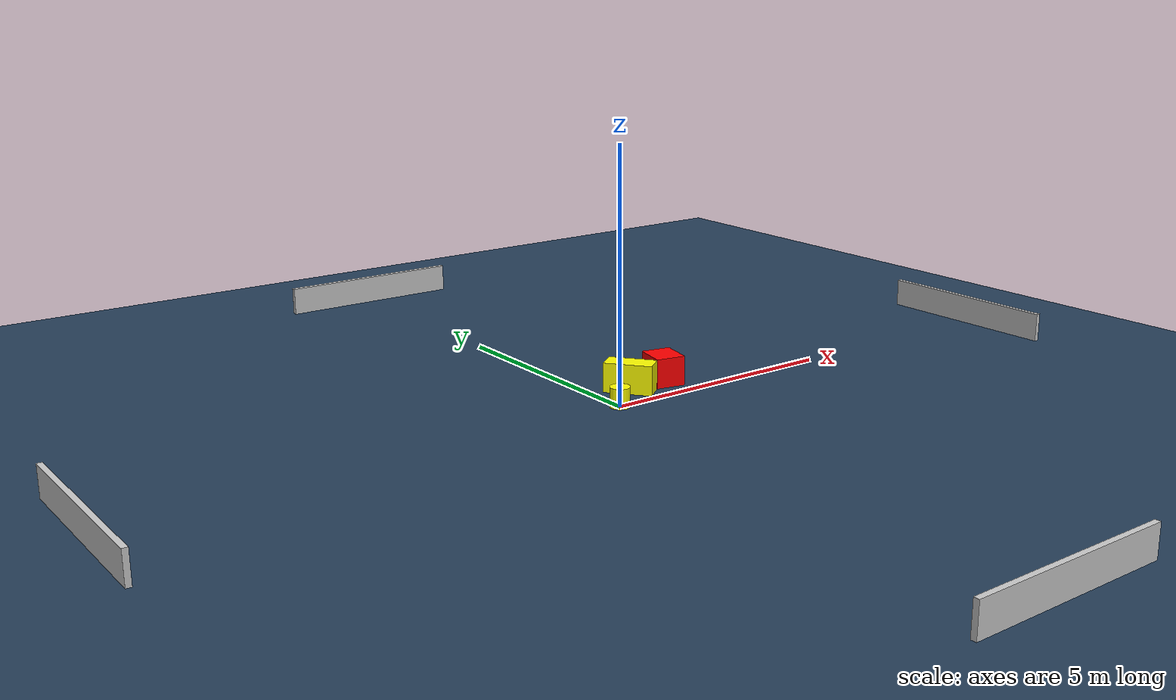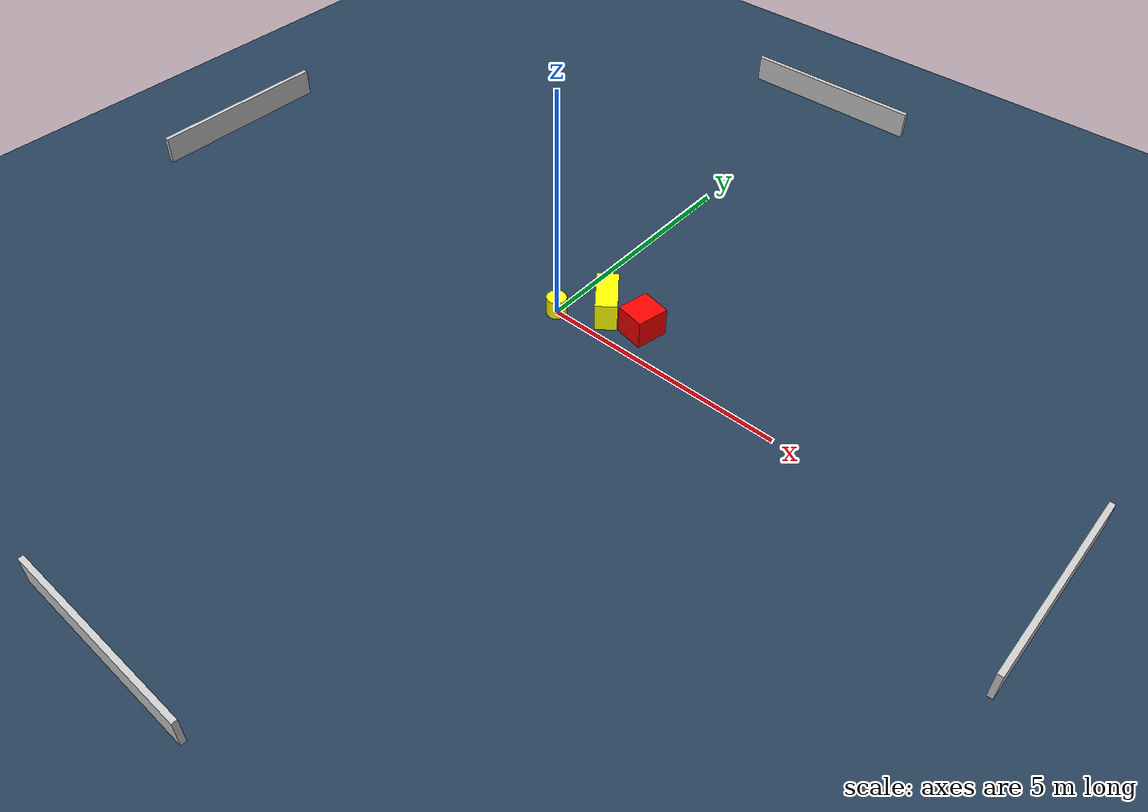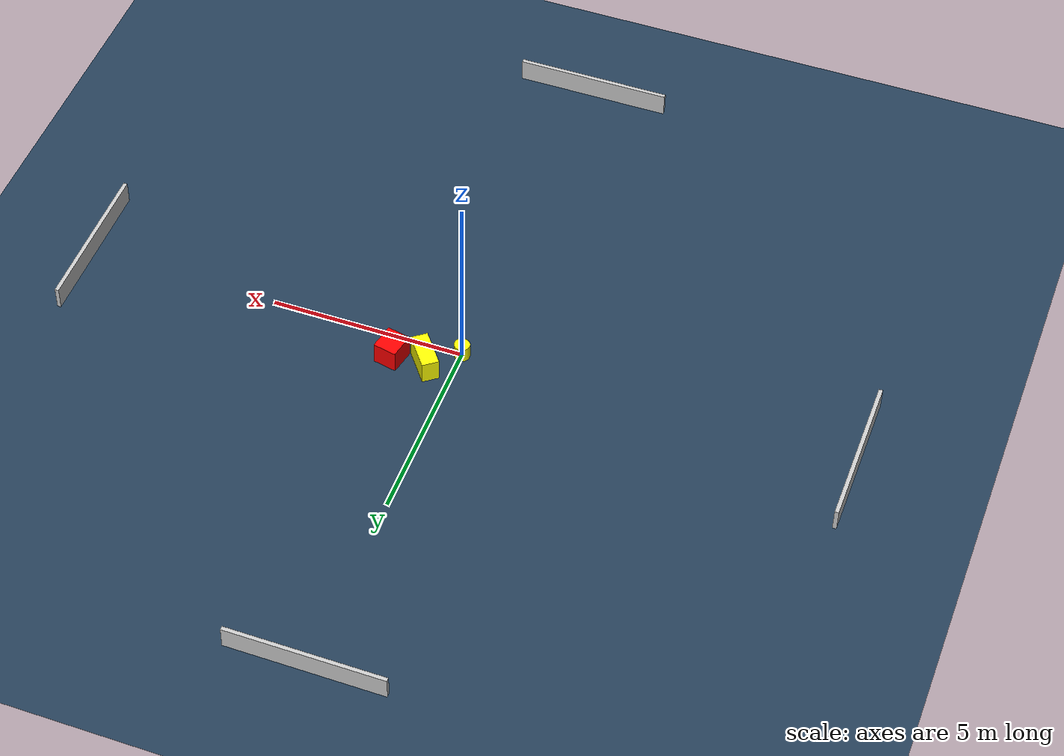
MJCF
<?xml version="1.0" ?>
<mujoco model="generated_environment">
  <option timestep="0.01" integrator="RK4" cone="elliptic"/>
  <default>
    <geom density="1"/>
  </default>
  <asset>
    <texture builtin="gradient" height="3072" name="skybox" rgb1="0.3 0.5 0.7" rgb2="0 0 0" type="skybox" width="512"/>
    <texture builtin="checker" height="300" name="groundplane" rgb1="0.2 0.3 0.4" rgb2="0.1 0.2 0.3" type="2d" width="300"/>
    <material name="groundplane" reflectance="0.2" texrepeat="5 5" texture="groundplane"/>
  </asset>
  <worldbody>
    <light dir="0 0 -1" directional="true" pos="0 0 1.5"/>
    <geom condim="3" friction="0.5 0.005 0.001" material="groundplane" name="floor" pos="0 0 0" size="0 0 0.05" type="plane"/>
    <body name="walls">
      <geom name="wall_1" condim="4" pos="-10.0 0.0 0.3" rgba="0.800000011920929 0.800000011920929 0.800000011920929 1.0" size="0.05 2.0 0.3" type="box"/>
      <geom name="wall_2" condim="4" pos="10.0 0.0 0.3" rgba="0.800000011920929 0.800000011920929 0.800000011920929 1.0" size="0.05 2.0 0.3" type="box"/>
      <geom name="wall_3" condim="4" pos="0.0 -10.0 0.3" rgba="0.800000011920929 0.800000011920929 0.800000011920929 1.0" size="2.0 0.05 0.3" type="box"/>
      <geom name="wall_4" condim="4" pos="0.0 10.0 0.3" rgba="0.800000011920929 0.800000011920929 0.800000011920929 1.0" size="2.0 0.05 0.3" type="box"/>
    </body>
    <body name="robot">
      <joint name="joint_x" type="slide" pos="0 0 0" axis="1 0 0"/>
      <joint name="joint_y" type="slide" pos="0 0 0" axis="0 1 0"/>
      <geom name="robot" type="cylinder" pos="0.0 0.0 0.2" size="0.2 0.2 0.0" mass="5.0" friction="1.0 0.005 0.0001" condim="4" rgba="1.0 1.0 0.0 1.0"/>
    </body>
    <body name="obstacle_1_movable">
      <geom name="obstacle_1_movable" condim="4" pos="0.734757058850046 0.6334545783208858 0.3" euler="0 0 37.743134829669046" friction="0.0 0.005 0.001" rgba="1.0 1.0 0.0 1.0" size="0.21885326654682183 0.4872964162711863 0.3" type="box" mass="0.1"/>
      <joint type="free"/>
    </body>
    <body name="obstacle_2_static">
      <geom name="obstacle_2_static" condim="4" pos="1.5864048017116574 0.6640724994518706 0.3" euler="0 0 258.4058438429057" friction="0.0 0.005 0.001" rgba="1.0 0.0 0.0 1.0" size="0.3335028207926328 0.3041429601676728 0.3" type="box"/>
    </body>
  </worldbody>
  <actuator>
    <motor name="actuator_x" joint="joint_x" gear="1" ctrlrange="-1 1"/>
    <motor name="actuator_y" joint="joint_y" gear="1" ctrlrange="-1 1"/>
  </actuator>
</mujoco>
